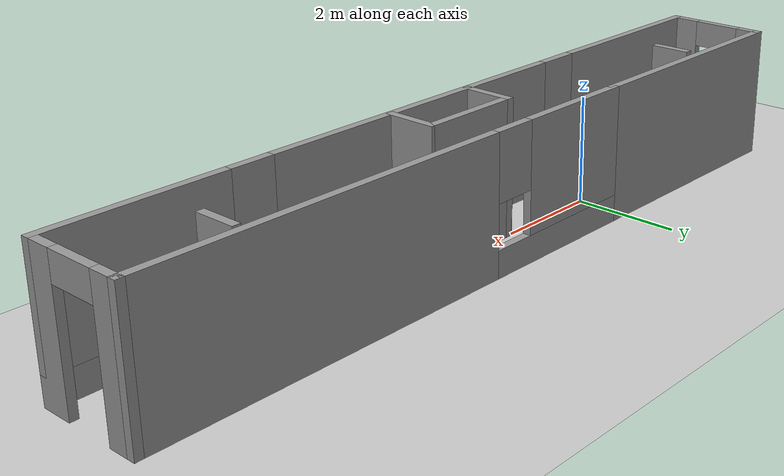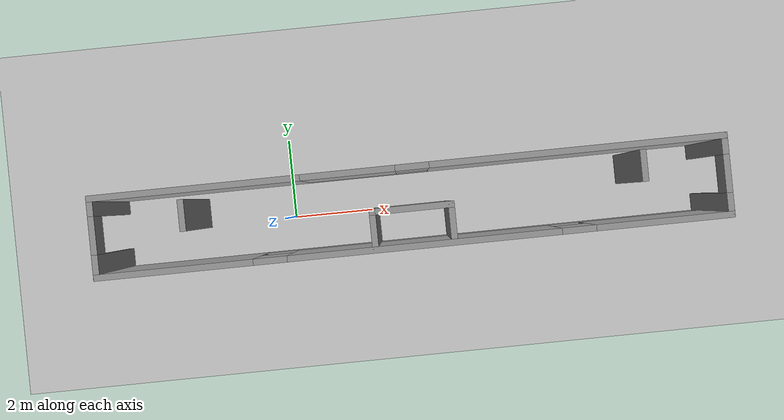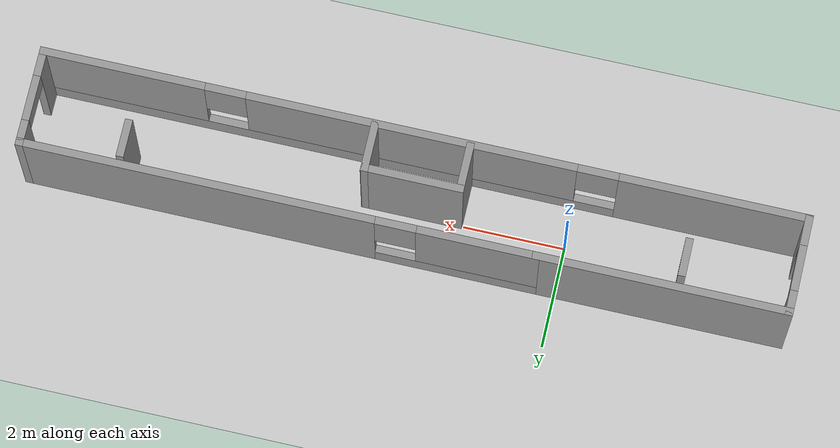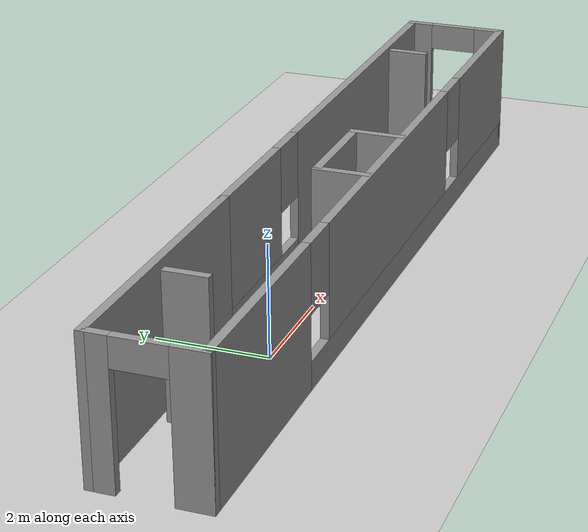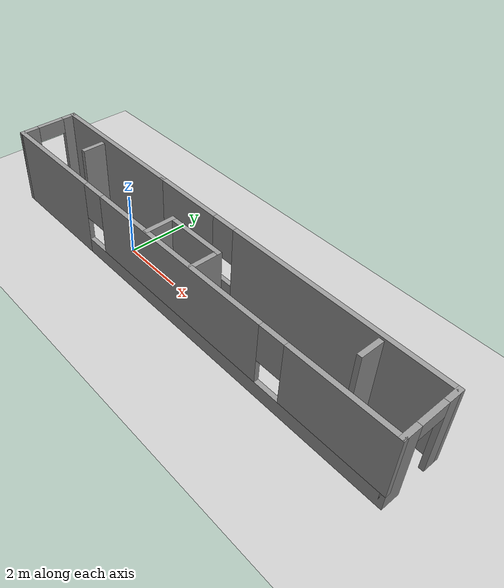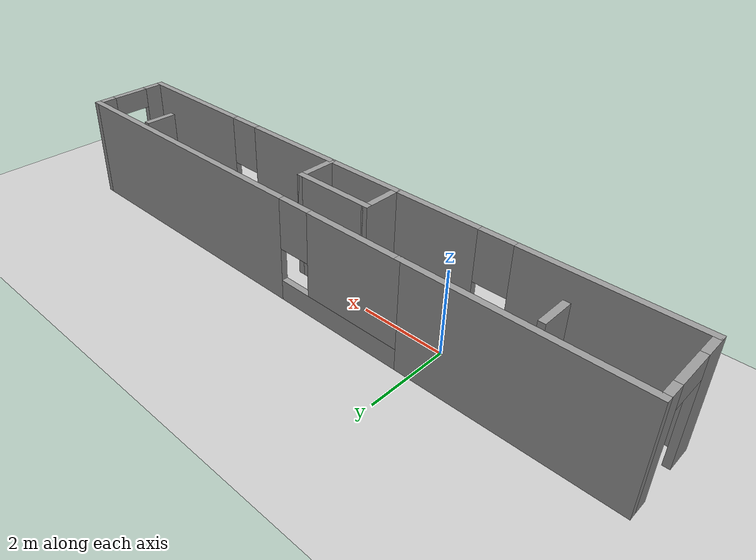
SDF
<sdf version="1.7">
 <world name="default">
  <light name="sun" type="directional">
   <pose>0 0 10 0 -0 0</pose>
   <diffuse>0.8 0.8 0.8 1</diffuse>
   <specular>0.2 0.2 0.2 1</specular>
   <attenuation>
    <range>1000</range>
    <constant>0.9</constant>
    <linear>0.01</linear>
    <quadratic>0.001</quadratic>
   </attenuation>
   <direction>-0.5 0.1 -0.9</direction>
   <spot><inner_angle>0</inner_angle><outer_angle>0</outer_angle><falloff>0</falloff></spot>
  </light>
  <model name="ground_plane">
   <static>1</static>
   <link name="link">
    <collision name="collision">
     <geometry><plane><normal>0 0 1</normal><size>100 100</size></plane></geometry>
     <surface>
      <contact><collide_bitmask>65535</collide_bitmask></contact>
      <friction><ode><mu>100</mu><mu2>50</mu2></ode></friction>
     </surface>
    </collision>
    <visual name="visual">
     <cast_shadows>0</cast_shadows>
     <geometry><plane><normal>0 0 1</normal><size>100 100</size></plane></geometry>
     <material>
      <script><uri>file://media/materials/scripts/gazebo.material</uri><name>Gazebo/Grey</name></script>
     </material>
    </visual>
   </link>
  </model>
  <gravity>0 0 -9.8</gravity>
  <magnetic_field>6e-06 2.3e-05 -4.2e-05</magnetic_field>
  <atmosphere type="adiabatic"/>
  <physics type="ode">
   <max_step_size>0.001</max_step_size>
   <real_time_factor>1</real_time_factor>
   <real_time_update_rate>1000</real_time_update_rate>
  </physics>
  <scene><ambient>0.4 0.4 0.4 1</ambient><background>0.7 0.7 0.7 1</background><shadows>1</shadows></scene>
  <spherical_coordinates>
   <surface_model>EARTH_WGS84</surface_model>
   <latitude_deg>0</latitude_deg>
   <longitude_deg>0</longitude_deg>
   <elevation>0</elevation>
   <heading_deg>0</heading_deg>
  </spherical_coordinates>
  <model name="corridor">
   <pose>3 0 0 0 -0 0</pose>
   <link name="Wall_14">
    <collision name="Wall_14_Collision">
     <geometry><box><size>0.75 0.15 2.5</size></box></geometry>
     <pose>0 0 1.25 0 -0 0</pose>
    </collision>
    <visual name="Wall_14_Visual">
     <pose>0 0 1.25 0 -0 0</pose>
     <geometry><box><size>0.75 0.15 2.5</size></box></geometry>
     <material>
      <script><uri>file://media/materials/scripts/gazebo.material</uri><name>Gazebo/Grey</name></script>
      <ambient>1 1 1 1</ambient>
     </material>
     <meta><layer>0</layer></meta>
    </visual>
    <pose>-5.31586 0.326195 0 0 -0 -1.5708</pose>
   </link>
   <link name="Wall_16">
    <collision name="Wall_16_Collision">
     <geometry><box><size>0.75 0.15 2.5</size></box></geometry>
     <pose>0 0 1.25 0 -0 0</pose>
    </collision>
    <visual name="Wall_16_Visual">
     <pose>0 0 1.25 0 -0 0</pose>
     <geometry><box><size>0.75 0.15 2.5</size></box></geometry>
     <material>
      <script><uri>file://media/materials/scripts/gazebo.material</uri><name>Gazebo/Grey</name></script>
      <ambient>1 1 1 1</ambient>
     </material>
     <meta><layer>0</layer></meta>
    </visual>
    <pose>5.51058 0.409359 0 0 -0 -1.5708</pose>
   </link>
   <link name="Wall_18">
    <collision name="Wall_18_Collision">
     <geometry><box><size>1 0.15 2.5</size></box></geometry>
     <pose>0 0 1.25 0 -0 0</pose>
    </collision>
    <visual name="Wall_18_Visual">
     <pose>0 0 1.25 0 -0 0</pose>
     <geometry><box><size>1 0.15 2.5</size></box></geometry>
     <material>
      <script><uri>file://media/materials/scripts/gazebo.material</uri><name>Gazebo/Grey</name></script>
      <ambient>1 1 1 1</ambient>
     </material>
     <meta><layer>0</layer></meta>
    </visual>
    <pose>-0.897763 -0.462582 0 0 -0 1.5708</pose>
   </link>
   <link name="Wall_19">
    <collision name="Wall_19_Collision">
     <geometry><box><size>2 0.15 2.5</size></box></geometry>
     <pose>0 0 1.25 0 -0 0</pose>
    </collision>
    <visual name="Wall_19_Visual">
     <pose>0 0 1.25 0 -0 0</pose>
     <geometry><box><size>2 0.15 2.5</size></box></geometry>
     <material>
      <script><uri>file://media/materials/scripts/gazebo.material</uri><name>Gazebo/Grey</name></script>
      <ambient>1 1 1 1</ambient>
     </material>
     <meta><layer>0</layer></meta>
    </visual>
    <pose>0.027237 -0.037582 0 0 -0 0</pose>
   </link>
   <link name="Wall_20">
    <collision name="Wall_20_Collision">
     <geometry><box><size>1 0.15 2.5</size></box></geometry>
     <pose>0 0 1.25 0 -0 0</pose>
    </collision>
    <visual name="Wall_20_Visual">
     <pose>0 0 1.25 0 -0 0</pose>
     <geometry><box><size>1 0.15 2.5</size></box></geometry>
     <material>
      <script><uri>file://media/materials/scripts/gazebo.material</uri><name>Gazebo/Grey</name></script>
      <ambient>1 1 1 1</ambient>
     </material>
     <meta><layer>0</layer></meta>
    </visual>
    <pose>0.952237 -0.462582 0 0 -0 -1.5708</pose>
   </link>
   <link name="Wall_5">
    <collision name="Wall_5_Collision">
     <geometry><box><size>5 0.15 2.5</size></box></geometry>
     <pose>0 0 1.25 0 -0 0</pose>
    </collision>
    <visual name="Wall_5_Visual">
     <pose>0 0 1.25 0 -0 0</pose>
     <geometry><box><size>5 0.15 2.5</size></box></geometry>
     <material>
      <script><uri>file://media/materials/scripts/gazebo.material</uri><name>Gazebo/Grey</name></script>
      <ambient>1 1 1 1</ambient>
     </material>
     <meta><layer>0</layer></meta>
    </visual>
    <pose>-5 0.925 0 0 -0 3.14159</pose>
   </link>
   <link name="Wall_6">
    <pose>-7.425 0 0 0 -0 -1.5708</pose>
    <visual name="Wall_6_Visual_0">
     <pose>-0.754621 0 1.25 0 -0 0</pose>
     <geometry><box><size>0.490758 0.15 2.5</size></box></geometry>
     <material>
      <script><uri>file://media/materials/scripts/gazebo.material</uri><name>Gazebo/Grey</name></script>
      <ambient>1 1 1 1</ambient>
     </material>
     <meta><layer>0</layer></meta>
    </visual>
    <collision name="Wall_6_Collision_0">
     <geometry><box><size>0.490758 0.15 2.5</size></box></geometry>
     <pose>-0.754621 0 1.25 0 -0 0</pose>
    </collision>
    <visual name="Wall_6_Visual_1">
     <pose>0.695379 0 1.25 0 -0 0</pose>
     <geometry><box><size>0.609242 0.15 2.5</size></box></geometry>
     <material>
      <script><uri>file://media/materials/scripts/gazebo.material</uri><name>Gazebo/Grey</name></script>
      <ambient>1 1 1 1</ambient>
     </material>
     <meta><layer>0</layer></meta>
    </visual>
    <collision name="Wall_6_Collision_1">
     <geometry><box><size>0.609242 0.15 2.5</size></box></geometry>
     <pose>0.695379 0 1.25 0 -0 0</pose>
    </collision>
    <visual name="Wall_6_Visual_2">
     <pose>-0.059242 0 2.25 0 -0 0</pose>
     <geometry><box><size>0.9 0.15 0.5</size></box></geometry>
     <material>
      <script><uri>file://media/materials/scripts/gazebo.material</uri><name>Gazebo/Grey</name></script>
      <ambient>1 1 1 1</ambient>
     </material>
     <meta><layer>0</layer></meta>
    </visual>
    <collision name="Wall_6_Collision_2">
     <geometry><box><size>0.9 0.15 0.5</size></box></geometry>
     <pose>-0.059242 0 2.25 0 -0 0</pose>
    </collision>
   </link>
   <link name="Wall_7">
    <pose>0 -0.925 0 0 -0 0</pose>
    <visual name="Wall_7_Visual_0">
     <pose>-5.63501 0 1.25 0 -0 0</pose>
     <geometry><box><size>3.72998 0.15 2.5</size></box></geometry>
     <material>
      <script><uri>file://media/materials/scripts/gazebo.material</uri><name>Gazebo/Grey</name></script>
      <ambient>1 1 1 1</ambient>
     </material>
     <meta><layer>0</layer></meta>
    </visual>
    <collision name="Wall_7_Collision_0">
     <geometry><box><size>3.72998 0.15 2.5</size></box></geometry>
     <pose>-5.63501 0 1.25 0 -0 0</pose>
    </collision>
    <visual name="Wall_7_Visual_1">
     <pose>1.86499 0 0.25 0 -0 0</pose>
     <geometry><box><size>11.27 0.15 0.5</size></box></geometry>
     <material>
      <script><uri>file://media/materials/scripts/gazebo.material</uri><name>Gazebo/Grey</name></script>
      <ambient>1 1 1 1</ambient>
     </material>
     <meta><layer>0</layer></meta>
    </visual>
    <collision name="Wall_7_Collision_1">
     <geometry><box><size>11.27 0.15 0.5</size></box></geometry>
     <pose>1.86499 0 0.25 0 -0 0</pose>
    </collision>
    <visual name="Wall_7_Visual_2">
     <pose>0.246315 0 1.5 0 -0 0</pose>
     <geometry><box><size>6.43268 0.15 2</size></box></geometry>
     <material>
      <script><uri>file://media/materials/scripts/gazebo.material</uri><name>Gazebo/Grey</name></script>
      <ambient>1 1 1 1</ambient>
     </material>
     <meta><layer>0</layer></meta>
    </visual>
    <collision name="Wall_7_Collision_2">
     <geometry><box><size>6.43268 0.15 2</size></box></geometry>
     <pose>0.246315 0 1.5 0 -0 0</pose>
    </collision>
    <visual name="Wall_7_Visual_3">
     <pose>5.88133 0 1.5 0 -0 0</pose>
     <geometry><box><size>3.23735 0.15 2</size></box></geometry>
     <material>
      <script><uri>file://media/materials/scripts/gazebo.material</uri><name>Gazebo/Grey</name></script>
      <ambient>1 1 1 1</ambient>
     </material>
     <meta><layer>0</layer></meta>
    </visual>
    <collision name="Wall_7_Collision_3">
     <geometry><box><size>3.23735 0.15 2</size></box></geometry>
     <pose>5.88133 0 1.5 0 -0 0</pose>
    </collision>
    <visual name="Wall_7_Visual_4">
     <pose>-3.37002 0 1.9 0 -0 0</pose>
     <geometry><box><size>0.8 0.15 1.2</size></box></geometry>
     <material>
      <script><uri>file://media/materials/scripts/gazebo.material</uri><name>Gazebo/Grey</name></script>
      <ambient>1 1 1 1</ambient>
     </material>
     <meta><layer>0</layer></meta>
    </visual>
    <collision name="Wall_7_Collision_4">
     <geometry><box><size>0.8 0.15 1.2</size></box></geometry>
     <pose>-3.37002 0 1.9 0 -0 0</pose>
    </collision>
    <visual name="Wall_7_Visual_5">
     <pose>3.86265 0 1.9 0 -0 0</pose>
     <geometry><box><size>0.8 0.15 1.2</size></box></geometry>
     <material>
      <script><uri>file://media/materials/scripts/gazebo.material</uri><name>Gazebo/Grey</name></script>
      <ambient>1 1 1 1</ambient>
     </material>
     <meta><layer>0</layer></meta>
    </visual>
    <collision name="Wall_7_Collision_5">
     <geometry><box><size>0.8 0.15 1.2</size></box></geometry>
     <pose>3.86265 0 1.9 0 -0 0</pose>
    </collision>
   </link>
   <link name="Wall_8">
    <pose>7.425 0 0 0 -0 1.5708</pose>
    <visual name="Wall_8_Visual_0">
     <pose>-0.708529 0 1.25 0 -0 0</pose>
     <geometry><box><size>0.582941 0.15 2.5</size></box></geometry>
     <material>
      <script><uri>file://media/materials/scripts/gazebo.material</uri><name>Gazebo/Grey</name></script>
      <ambient>1 1 1 1</ambient>
     </material>
     <meta><layer>0</layer></meta>
    </visual>
    <collision name="Wall_8_Collision_0">
     <geometry><box><size>0.582941 0.15 2.5</size></box></geometry>
     <pose>-0.708529 0 1.25 0 -0 0</pose>
    </collision>
    <visual name="Wall_8_Visual_1">
     <pose>0.741471 0 1.25 0 -0 0</pose>
     <geometry><box><size>0.517059 0.15 2.5</size></box></geometry>
     <material>
      <script><uri>file://media/materials/scripts/gazebo.material</uri><name>Gazebo/Grey</name></script>
      <ambient>1 1 1 1</ambient>
     </material>
     <meta><layer>0</layer></meta>
    </visual>
    <collision name="Wall_8_Collision_1">
     <geometry><box><size>0.517059 0.15 2.5</size></box></geometry>
     <pose>0.741471 0 1.25 0 -0 0</pose>
    </collision>
    <visual name="Wall_8_Visual_2">
     <pose>0.032941 0 2.25 0 -0 0</pose>
     <geometry><box><size>0.9 0.15 0.5</size></box></geometry>
     <material>
      <script><uri>file://media/materials/scripts/gazebo.material</uri><name>Gazebo/Grey</name></script>
      <ambient>1 1 1 1</ambient>
     </material>
     <meta><layer>0</layer></meta>
    </visual>
    <collision name="Wall_8_Collision_2">
     <geometry><box><size>0.9 0.15 0.5</size></box></geometry>
     <pose>0.032941 0 2.25 0 -0 0</pose>
    </collision>
   </link>
   <link name="Wall_9">
    <pose>2.425 0.925 0 0 -0 3.14159</pose>
    <visual name="Wall_9_Visual_0">
     <pose>-1.58898 0 1.25 0 -0 0</pose>
     <geometry><box><size>6.97204 0.15 2.5</size></box></geometry>
     <material>
      <script><uri>file://media/materials/scripts/gazebo.material</uri><name>Gazebo/Grey</name></script>
      <ambient>1 1 1 1</ambient>
     </material>
     <meta><layer>0</layer></meta>
    </visual>
    <collision name="Wall_9_Collision_0">
     <geometry><box><size>6.97204 0.15 2.5</size></box></geometry>
     <pose>-1.58898 0 1.25 0 -0 0</pose>
    </collision>
    <visual name="Wall_9_Visual_1">
     <pose>3.48602 0 0.25 0 -0 0</pose>
     <geometry><box><size>3.17796 0.15 0.5</size></box></geometry>
     <material>
      <script><uri>file://media/materials/scripts/gazebo.material</uri><name>Gazebo/Grey</name></script>
      <ambient>1 1 1 1</ambient>
     </material>
     <meta><layer>0</layer></meta>
    </visual>
    <collision name="Wall_9_Collision_1">
     <geometry><box><size>3.17796 0.15 0.5</size></box></geometry>
     <pose>3.48602 0 0.25 0 -0 0</pose>
    </collision>
    <visual name="Wall_9_Visual_2">
     <pose>3.88602 0 1.5 0 -0 0</pose>
     <geometry><box><size>2.37796 0.15 2</size></box></geometry>
     <material>
      <script><uri>file://media/materials/scripts/gazebo.material</uri><name>Gazebo/Grey</name></script>
      <ambient>1 1 1 1</ambient>
     </material>
     <meta><layer>0</layer></meta>
    </visual>
    <collision name="Wall_9_Collision_2">
     <geometry><box><size>2.37796 0.15 2</size></box></geometry>
     <pose>3.88602 0 1.5 0 -0 0</pose>
    </collision>
    <visual name="Wall_9_Visual_3">
     <pose>2.29704 0 1.9 0 -0 0</pose>
     <geometry><box><size>0.8 0.15 1.2</size></box></geometry>
     <material>
      <script><uri>file://media/materials/scripts/gazebo.material</uri><name>Gazebo/Grey</name></script>
      <ambient>1 1 1 1</ambient>
     </material>
     <meta><layer>0</layer></meta>
    </visual>
    <collision name="Wall_9_Collision_3">
     <geometry><box><size>0.8 0.15 1.2</size></box></geometry>
     <pose>2.29704 0 1.9 0 -0 0</pose>
    </collision>
   </link>
   <static>1</static>
  </model>
 </world>
</sdf>
